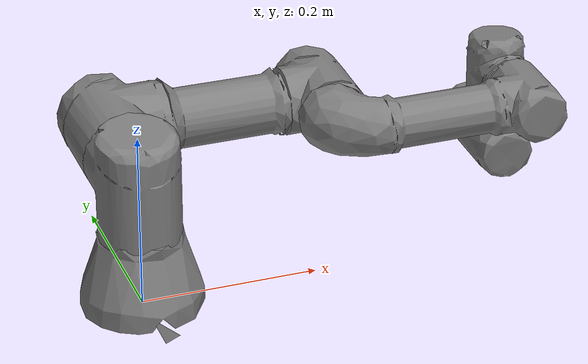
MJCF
<mujoco model="ur3">
  <compiler angle="radian"/>

  <asset>
    <mesh name="base" content_type="model/stl" file="/home/ubuntu/ur3_ft300_ws/src/ur_description/meshes/ur3/collision/base.stl"/>
    <mesh name="shoulder" content_type="model/stl" file="/home/ubuntu/ur3_ft300_ws/src/ur_description/meshes/ur3/collision/shoulder.stl"/>
    <mesh name="upperarm" content_type="model/stl" file="/home/ubuntu/ur3_ft300_ws/src/ur_description/meshes/ur3/collision/upperarm.stl"/>
    <mesh name="forearm" content_type="model/stl" file="/home/ubuntu/ur3_ft300_ws/src/ur_description/meshes/ur3/collision/forearm.stl"/>
    <mesh name="wrist1" content_type="model/stl" file="/home/ubuntu/ur3_ft300_ws/src/ur_description/meshes/ur3/collision/wrist1.stl"/>
    <mesh name="wrist2" content_type="model/stl" file="/home/ubuntu/ur3_ft300_ws/src/ur_description/meshes/ur3/collision/wrist2.stl"/>
    <mesh name="wrist3" content_type="model/stl" file="/home/ubuntu/ur3_ft300_ws/src/ur_description/meshes/ur3/collision/wrist3.stl"/>
  </asset>

  <!-- Adjacent bodies meet at the shoulder joint and must not collide. -->
  <contact>
    <exclude body1="world" body2="shoulder_link"/>
  </contact>

  <worldbody>
    <geom quat="-1 0 0 0" type="mesh" mesh="base"/>
    <body name="shoulder_link" pos="0 0 0.1519" quat="0 0 0 1">
      <inertial pos="0 0 -0.02" mass="2" diaginertia="0.00809317 0.00809317 0.005625"/>
      <joint name="shoulder_pan_joint" limited="true" range="-6.28319 6.28319" actuatorfrcrange="-56 56"/>
      <geom quat="0 0 0 1" type="mesh" mesh="shoulder"/>
      <body name="upper_arm_link" quat="0.707107 0.707107 0 0">
        <inertial pos="-0.11365 0 0.1157" mass="3.42" diaginertia="0.0217285 0.0217285 0.00961875"/>
        <joint name="shoulder_lift_joint" limited="true" range="-6.28319 6.28319" actuatorfrcrange="-56 56"/>
        <geom pos="0 0 0.1198" quat="0.5 0.5 -0.5 -0.5" type="mesh" mesh="upperarm"/>
        <body name="forearm_link" pos="-0.24365 0 0">
          <inertial pos="-0.16325 0 0.0238" mass="1.26" diaginertia="0.00654681 0.00654681 0.00354375"/>
          <joint name="elbow_joint" limited="true" range="-3.14159 3.14159" actuatorfrcrange="-28 28"/>
          <geom pos="0 0 0.0275" quat="0.5 0.5 -0.5 -0.5" type="mesh" mesh="forearm"/>
          <body name="wrist_1_link" pos="-0.21325 0 0.11235">
            <inertial pos="0 -0.01 0" quat="0.5 0.5 -0.5 0.5" mass="0.8" diaginertia="0.00225 0.00161064 0.00161064"/>
            <joint name="wrist_1_joint" limited="true"  range="-6.28319 6.28319" actuatorfrcrange="-12 12"/>
            <geom pos="0 0 -0.085" quat="0.707107 0.707107 0 0" type="mesh" mesh="wrist1"/>
            <body name="wrist_2_link" pos="0 -0.08535 -1.75056e-11" quat="0.707107 0.707107 0 0">
              <inertial pos="0 0.01 0" quat="0.5 0.5 -0.5 0.5" mass="0.8" diaginertia="0.00225 0.00157217 0.00157217"/>
              <joint name="wrist_2_joint" limited="true" range="-6.28319 6.28319" actuatorfrcrange="-12 12"/>
              <geom pos="0 0 -0.083" quat="1 0 0 0" type="mesh" mesh="wrist2"/>
              <body name="wrist_3_link" pos="0 0.0819 -1.6798e-11" quat="0.707107 -0.707107 0 0">
                <inertial pos="0 0 -0.02" quat="0.5 0.5 -0.5 0.5" mass="0.35" diaginertia="0.0001792 0.000136267 0.000136267"/>
                <joint name="wrist_3_joint" limited="true" range="-6.28319 6.28319" actuatorfrcrange="-12 12"/>
                <geom pos="0 -0.002 -0.082" quat="0.707107 0.707107 0 0" type="mesh" mesh="wrist3"/>
              </body>
            </body>
          </body>
        </body>
      </body>
    </body>
  </worldbody>
  <actuator>

    <motor
        name="shoulder_pan_motor"
        joint="shoulder_pan_joint"
        gear="1"
    />

    <motor
        name="shoulder_lift_motor"
        joint="shoulder_lift_joint"
        gear="1"
    />

    <motor
        name="elbow_motor"
        joint="elbow_joint"
        gear="1"
    />

    <motor
        name="wrist1_motor"
        joint="wrist_1_joint"
        gear="1"
    />

    <motor
        name="wrist2_motor"
        joint="wrist_2_joint"
        gear="1"
    />

    <motor
        name="wrist3_motor"
        joint="wrist_3_joint"
        gear="1"
    />

</actuator>
</mujoco>
